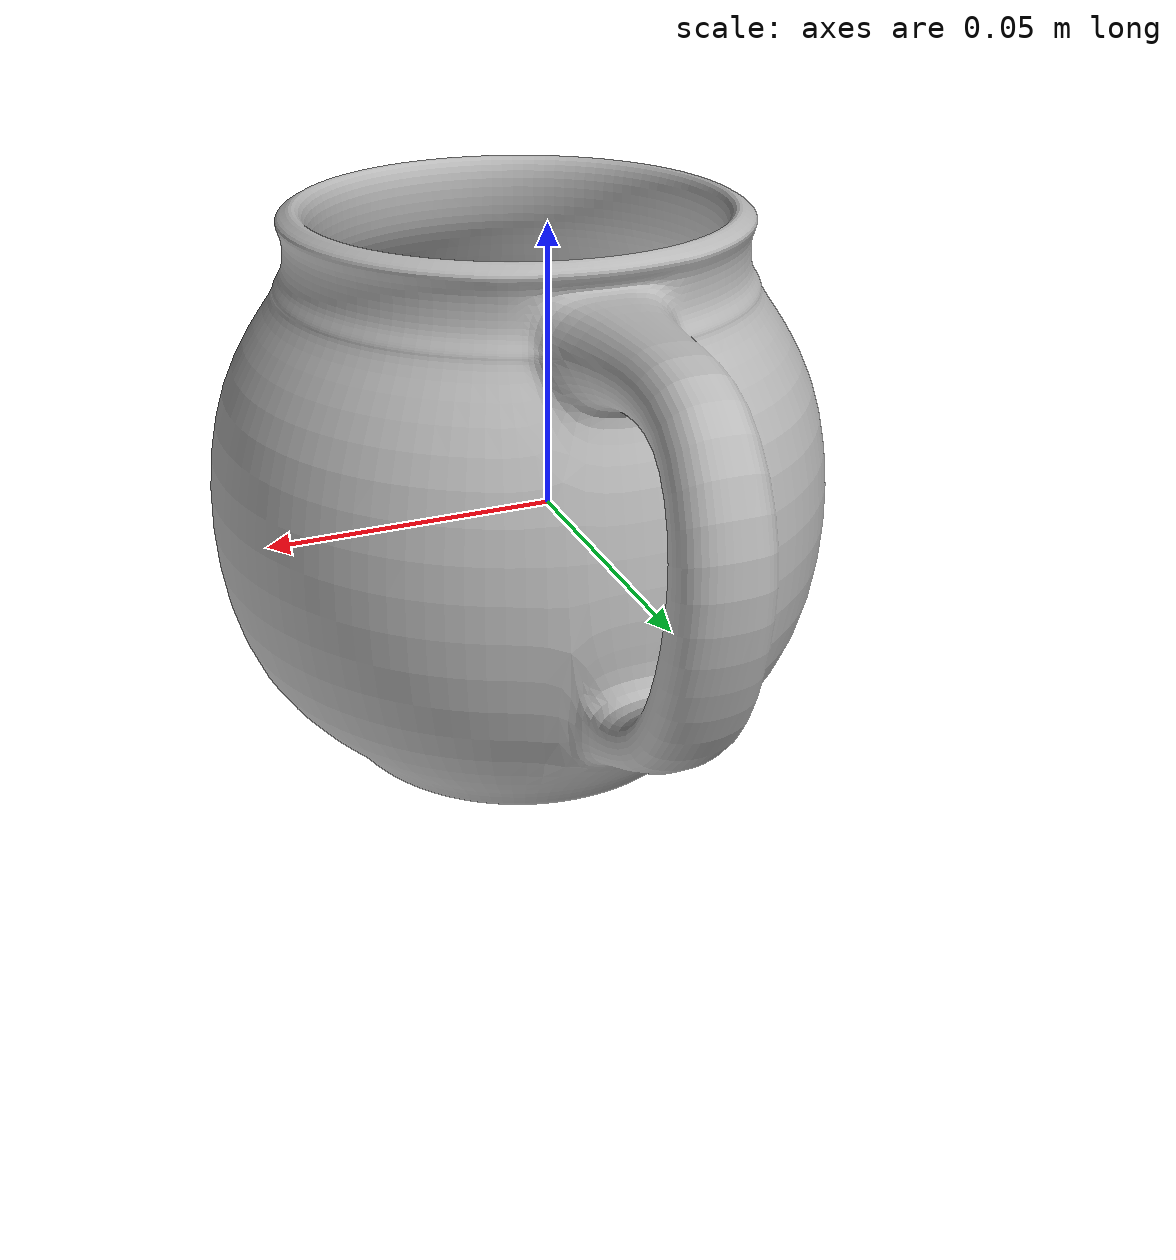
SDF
<?xml version="1.0" ?>
<sdf version="1.5">
  <model name="mug">
	<static>false</static>
    <pose>0 0 0 0 0 0</pose>
    <link name="link">
      <inertial>
        <mass>0.1</mass>
      </inertial>
      <collision name="collision">
        <geometry>
          <mesh>
            <uri>model://Mug/meshes/mug.obj</uri>
            <scale>1 1 1</scale>
          </mesh>
        </geometry>
      </collision>
      <visual name="visual">
        <geometry>
          <mesh>
            <uri>model://Mug/meshes/mug.obj</uri>
          </mesh>
        </geometry>
        <material>
        <script>
        <uri>model://Mug/materials/scripts</uri>
        <uri>model://Mug/materials/textures</uri>
        <name>mugMat/Diffuse</name>
        </script>
        </material>
      </visual>
    </link>
  </model>
</sdf>
